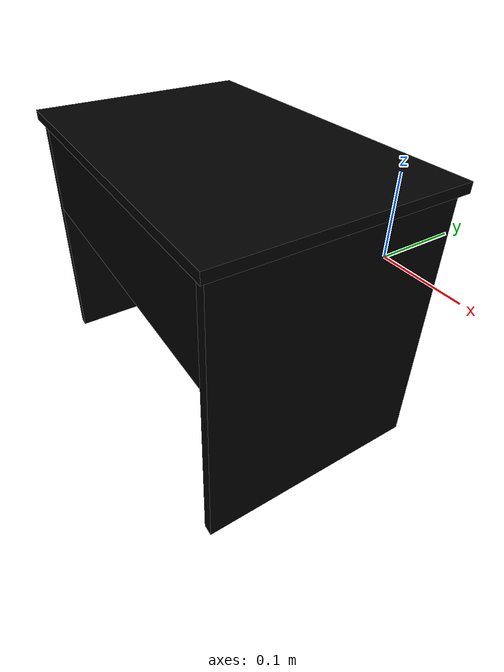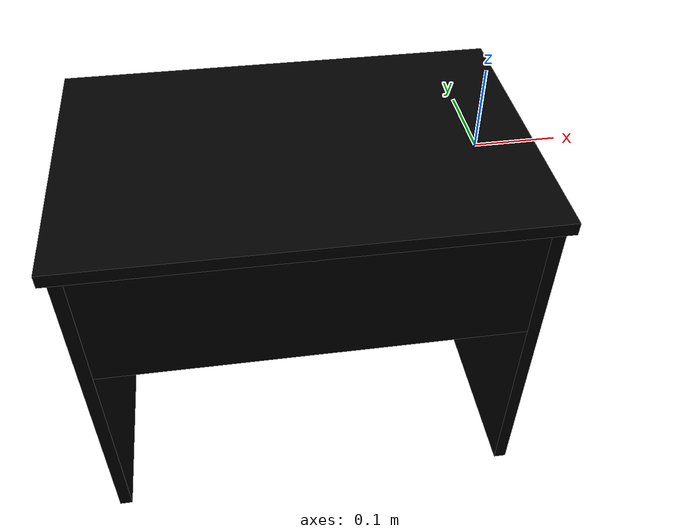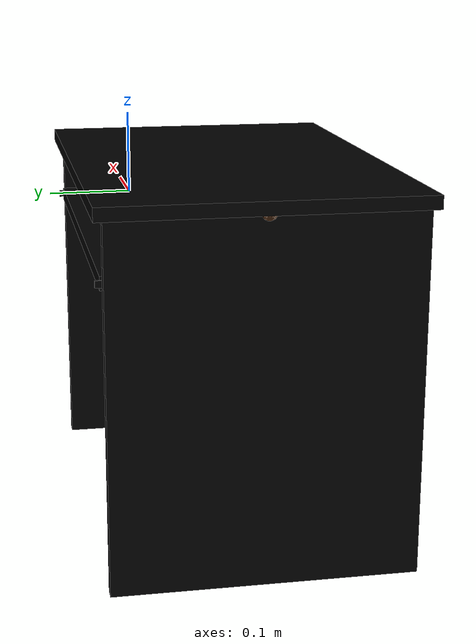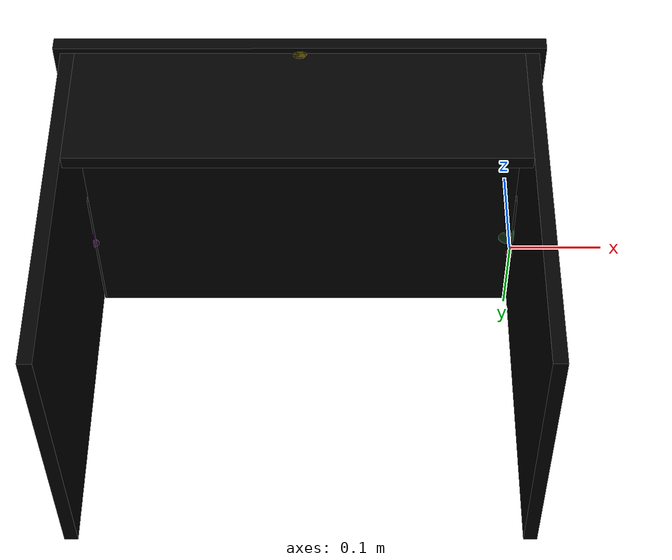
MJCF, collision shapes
<mujoco model="desk_hannes_0529">
    <custom>
        <numeric data="-0.278467 0.171887 0.003515 1.0 0.0 -1e-06 0.000885" name="0_part0_initpos"/>
        <numeric data="0.060741 0.01891 0.007061 0.0 -1.0 0.0 -0.0" name="8_part8_initpos"/>
        <numeric data="0.067668 -0.315762 0.007165 1.0 0.0 0.0 0.0" name="7_part7_initpos"/>
        <numeric data="0.561685 0.027393 0.007061 0.478652 -0.520473 0.478652 0.520473" name="6_part6_initpos"/>
        <numeric data="0.047691 0.340941 0.007061 0.707107 0.707107 2.9e-05 2.9e-05" name="5_part5_initpos"/>
        <numeric data="-0.488397 0.002862 0.007061 0.497087 -0.502896 -0.497087 -0.502896" name="4_part4_initpos"/>
        <numeric data="-0.24835 -0.085303 0.00087 0.706892 -0.017461 0.706891 0.017461" name="3_part3_initpos"/>
        <numeric data="-0.168998 0.03854 -0.000343 1.0 0.0 0.0 0.0" name="2_part2_initpos"/>
        <numeric data="-0.25187 0.053577 0.001034 1.0 0.0 0.0 0.0" name="1_part1_initpos"/>
    </custom>
    <asset>
        <mesh file="desk_hannes_0529/0.stl" name="part0"
              scale="0.0005583599999999999 0.0005583599999999999 0.0005583599999999999"/>
        <mesh file="desk_hannes_0529/8.stl" name="part8"
              scale="0.0005583599999999999 0.0005583599999999999 0.0005583599999999999"/>
        <mesh file="desk_hannes_0529/7.stl" name="part7"
              scale="0.0005583599999999999 0.0005583599999999999 0.0005583599999999999"/>
        <mesh file="desk_hannes_0529/6.stl" name="part6"
              scale="0.0005583599999999999 0.0005583599999999999 0.0005583599999999999"/>
        <mesh file="desk_hannes_0529/5.stl" name="part5"
              scale="0.0005583599999999999 0.0005583599999999999 0.0005583599999999999"/>
        <mesh file="desk_hannes_0529/4.stl" name="part4"
              scale="0.0005583599999999999 0.0005583599999999999 0.0005583599999999999"/>
        <mesh file="desk_hannes_0529/3.stl" name="part3"
              scale="0.0005583599999999999 0.0005583599999999999 0.0005583599999999999"/>
        <mesh file="desk_hannes_0529/2.stl" name="part2"
              scale="0.0005583599999999999 0.0005583599999999999 0.0005583599999999999"/>
        <mesh file="desk_hannes_0529/1.stl" name="part1"
              scale="0.0005583599999999999 0.0005583599999999999 0.0005583599999999999"/>
    </asset>
    <equality>
        <weld active="false" body1="0_part0" body2="7_part7" solimp="1 1 0.5" solref="0.01 0.3"/>
        <weld active="false" body1="3_part3" body2="7_part7" solimp="1 1 0.5" solref="0.01 0.3"/>
        <weld active="false" body1="8_part8" body2="6_part6" solimp="1 1 0.5" solref="0.01 0.3"/>
        <weld active="false" body1="4_part4" body2="0_part0" solimp="1 1 0.5" solref="0.01 0.3"/>
        <weld active="false" body1="4_part4" body2="3_part3" solimp="1 1 0.5" solref="0.01 0.3"/>
        <weld active="false" body1="0_part0" body2="6_part6" solimp="1 1 0.5" solref="0.01 0.3"/>
        <weld active="false" body1="3_part3" body2="6_part6" solimp="1 1 0.5" solref="0.01 0.3"/>
        <weld active="false" body1="8_part8" body2="4_part4" solimp="1 1 0.5" solref="0.01 0.3"/>
        <weld active="false" body1="8_part8" body2="5_part5" solimp="1 1 0.5" solref="0.01 0.3"/>
    </equality>
    <worldbody>
        <body name="0_part0" pos="-0.0 1.6750799999999996e-10 0.0" quat="1 0 0 0">
            <geom conaffinity="0" contype="0" density="0" mesh="part0" name="0_part0_mesh" pos="0.0 0.0 0.0"
                  rgba="0.82 0.71 0.55 1" type="mesh"/>
            <site name="0_part0_horizontal_radius_site" pos="-0.0 1.6750799999999996e-10 0.0" quat="1 0 0 0"
                  rgba="0 0 0 0" size="0.0005583599999999999"/>
            <site name="0_part0_top_site" pos="-0.0 1.6750799999999996e-10 0.0035455859999999994" quat="1 0 0 0"
                  rgba="0 0 0 0" size="0.0005583599999999999"/>
            <site name="0_part0_bottom_site" pos="-0.0 1.6750799999999996e-10 -0.0035455859999999994" quat="1 0 0 0"
                  rgba="0 0 0 0" size="0.0005583599999999999"/>
            <site name="0_part0_corner_site8" pos="-0.0014182426078919997 0.083675829935016 0.0035455859999999994"
                  quat="1 0 0 0" rgba="0 0 0 0" size="0.011167199999999997"/>
            <site name="0_part0_corner_site7" pos="0.001418242552056 0.083675829935016 0.0035455859999999994"
                  quat="1 0 0 0" rgba="0 0 0 0" size="0.011167199999999997"/>
            <site name="0_part0_corner_site6" pos="0.001418242552056 -0.0836758296 0.0035455859999999994" quat="1 0 0 0"
                  rgba="0 0 0 0" size="0.011167199999999997"/>
            <site name="0_part0_corner_site5" pos="-0.0014182426078919997 -0.0836758296 0.0035455859999999994"
                  quat="1 0 0 0" rgba="0 0 0 0" size="0.011167199999999997"/>
            <site name="0_part0_corner_site4" pos="-0.0014182426078919997 0.083675829935016 -0.0035455859999999994"
                  quat="1 0 0 0" rgba="0 0 0 0" size="0.011167199999999997"/>
            <site name="0_part0_corner_site3" pos="0.001418242552056 0.083675829935016 -0.0035455859999999994"
                  quat="1 0 0 0" rgba="0 0 0 0" size="0.011167199999999997"/>
            <site name="0_part0_corner_site2" pos="0.001418242552056 -0.0836758296 -0.0035455859999999994"
                  quat="1 0 0 0" rgba="0 0 0 0" size="0.011167199999999997"/>
            <site name="0_part0_corner_site1" pos="-0.0014182426078919997 -0.0836758296 -0.0035455859999999994"
                  quat="1 0 0 0" rgba="0 0 0 0" size="0.011167199999999997"/>
            <site name="slider-wall,0,180,conn_site1" pos="0.003796847999999999 0.000502524 -0.00039085199999999996"
                  quat="0.7071067 0 0.7071068 0" rgba="0.9019 0.0980 0.2941 0.3" size="0.011167199999999997"/>
            <site name="slider-drawer,0,conn_site1" pos="-0.005695271999999999 -0.026633772 -0.0015634079999999999"
                  quat="0.7071067 0 0.7071068 0" rgba="0.2352 0.7058 0.2941 0.3" size="0.011167199999999997"/>
            <geom density="50" name="noviz_collision_0_part0_0"
                  pos="0.00025920746279999994 0.002378557764 1.16473896e-05" quat="1 0 0 0" rgba="0 0 0 0"
                  size="0.0016774474463999997 0.08605438736399999 0.0035572333895999998" solref="0.001 1" type="box"/>
        </body>
        <body name="8_part8" pos="-0.22815844408011599 -0.07676193349400401 0.07091172" quat="1 0 0 0">
            <geom conaffinity="0" contype="0" density="0" mesh="part8" name="8_part8_mesh" pos="0.0 0.0 0.0"
                  rgba="0.82 0.71 0.55 1" type="mesh"/>
            <site name="8_part8_horizontal_radius_site" pos="0.0 0.0 0.0" quat="1 0 0 0" rgba="0 0 0 0"
                  size="0.0005583599999999999"/>
            <site name="8_part8_top_site" pos="0.0 0.0 0.007091178811991997" quat="1 0 0 0" rgba="0 0 0 0"
                  size="0.0005583599999999999"/>
            <site name="8_part8_bottom_site" pos="0.0 0.0 -0.007091178811991997" quat="1 0 0 0" rgba="0 0 0 0"
                  size="0.0005583599999999999"/>
            <site name="8_part8_corner_site8" pos="-0.25085021631199195 0.16752894190599593 0.007091178811991997"
                  quat="1 0 0 0" rgba="0 0 0 0" size="0.011167199999999997"/>
            <site name="8_part8_corner_site7" pos="0.25085021631199195 0.16752894190599593 0.007091178811991997"
                  quat="1 0 0 0" rgba="0 0 0 0" size="0.011167199999999997"/>
            <site name="8_part8_corner_site6" pos="0.25085021631199195 -0.16752894190599593 0.007091178811991997"
                  quat="1 0 0 0" rgba="0 0 0 0" size="0.011167199999999997"/>
            <site name="8_part8_corner_site5" pos="-0.25085021631199195 -0.16752894190599593 0.007091178811991997"
                  quat="1 0 0 0" rgba="0 0 0 0" size="0.011167199999999997"/>
            <site name="8_part8_corner_site4" pos="-0.25085021631199195 0.16752894190599593 -0.007091178811991997"
                  quat="1 0 0 0" rgba="0 0 0 0" size="0.011167199999999997"/>
            <site name="8_part8_corner_site3" pos="0.25085021631199195 0.16752894190599593 -0.007091178811991997"
                  quat="1 0 0 0" rgba="0 0 0 0" size="0.011167199999999997"/>
            <site name="8_part8_corner_site2" pos="0.25085021631199195 -0.16752894190599593 -0.007091178811991997"
                  quat="1 0 0 0" rgba="0 0 0 0" size="0.011167199999999997"/>
            <site name="8_part8_corner_site1" pos="-0.25085021631199195 -0.16752894190599593 -0.007091178811991997"
                  quat="1 0 0 0" rgba="0 0 0 0" size="0.011167199999999997"/>
            <site name="top-back,0,conn_site1" pos="-1.6750799999999998e-08 -0.15250067909999998 -0.007035336"
                  quat="1 0 0 0" rgba="1.0 0.8823 0.0980 0.3" size="0.011167199999999997"/>
            <site name="top-leftwall,0,conn_site1" pos="0.23636635109999996 0.0 -0.004857731999999999" quat="1 0 0 0"
                  rgba="0.2627 0.3882 0.8470 0.3" size="0.011167199999999997"/>
            <site name="top-rightwall,0,conn_site1" pos="-0.23662046073599993 0.0 -0.004857731999999999" quat="1 0 0 0"
                  rgba="0.9607 0.5098 0.1921 0.3" size="0.011167199999999997"/>
            <geom density="50" name="noviz_collision_8_part8_0" pos="-1.6750799999999998e-08 0.0 0.0" quat="1 0 0 0"
                  rgba="0 0 0 0" size="0.2508502094999999 0.16752893849999997 0.0070911775836" solref="0.001 1"
                  type="box"/>
        </body>
        <body name="7_part7" pos="-0.22815845094794399 -0.029782922399999995 0.0" quat="1 0 0 0">
            <geom conaffinity="0" contype="0" density="0" mesh="part7" name="7_part7_mesh" pos="0.0 0.0 0.0"
                  rgba="0.82 0.71 0.55 1" type="mesh"/>
            <site name="7_part7_horizontal_radius_site" pos="-0.0 -0.0 0.0" quat="1 0 0 0" rgba="0 0 0 0"
                  size="0.0005583599999999999"/>
            <site name="7_part7_top_site" pos="0.0 0.0 0.007091178811991997" quat="1 0 0 0" rgba="0 0 0 0"
                  size="0.0005583599999999999"/>
            <site name="7_part7_bottom_site" pos="0.0 0.0 -0.007091178811991997" quat="1 0 0 0" rgba="0 0 0 0"
                  size="0.0005583599999999999"/>
            <site name="7_part7_corner_site8" pos="-0.22674022469999996 0.11345875199999998 0.007091178811991997"
                  quat="1 0 0 0" rgba="0 0 0 0" size="0.011167199999999997"/>
            <site name="7_part7_corner_site7" pos="0.22674022469999996 0.11345875199999998 0.007091178811991997"
                  quat="1 0 0 0" rgba="0 0 0 0" size="0.011167199999999997"/>
            <site name="7_part7_corner_site6" pos="0.22674022469999996 -0.11345875199999998 0.007091178811991997"
                  quat="1 0 0 0" rgba="0 0 0 0" size="0.011167199999999997"/>
            <site name="7_part7_corner_site5" pos="-0.22674022469999996 -0.11345875199999998 0.007091178811991997"
                  quat="1 0 0 0" rgba="0 0 0 0" size="0.011167199999999997"/>
            <site name="7_part7_corner_site4" pos="-0.22674022469999996 0.11345875199999998 -0.007091178811991997"
                  quat="1 0 0 0" rgba="0 0 0 0" size="0.011167199999999997"/>
            <site name="7_part7_corner_site3" pos="0.22674022469999996 0.11345875199999998 -0.007091178811991997"
                  quat="1 0 0 0" rgba="0 0 0 0" size="0.011167199999999997"/>
            <site name="7_part7_corner_site2" pos="0.22674022469999996 -0.11345875199999998 -0.007091178811991997"
                  quat="1 0 0 0" rgba="0 0 0 0" size="0.011167199999999997"/>
            <site name="7_part7_corner_site1" pos="-0.22674022469999996 -0.11345875199999998 -0.007091178811991997"
                  quat="1 0 0 0" rgba="0 0 0 0" size="0.011167199999999997"/>
            <site name="drawer-slider,0,conn_site1"
                  pos="0.22246318709999996 0.003149150399999999 -0.0015634079999999999" quat="0.7071067 0 0.7071068 0"
                  rgba="0.2352 0.7058 0.2941 0.3" size="0.011167199999999997"/>
            <geom density="50" name="noviz_collision_7_part7_0" pos="0.0 0.0 0.0" quat="1 0 0 0" rgba="0 0 0 0"
                  size="0.22674022469999996 0.11345875199999998 0.0070911775836" solref="0.001 1" type="box"/>
        </body>
        <body name="6_part6" pos="0.008509414552056 -0.0767619369 -0.12764109599999998" quat="1 0 0 0">
            <geom conaffinity="0" contype="0" density="0" mesh="part6" name="6_part6_mesh" pos="0.0 0.0 0.0"
                  rgba="0.82 0.71 0.55 1" type="mesh"/>
            <site name="6_part6_horizontal_radius_site" pos="0.0 5.583599999999999e-11 -0.0" quat="1 0 0 0"
                  rgba="0 0 0 0" size="0.0005583599999999999"/>
            <site name="6_part6_top_site" pos="0.0 5.583599999999999e-11 0.19146164399999996" quat="1 0 0 0"
                  rgba="0 0 0 0" size="0.0005583599999999999"/>
            <site name="6_part6_bottom_site" pos="0.0 5.583599999999999e-11 -0.19146164399999996" quat="1 0 0 0"
                  rgba="0 0 0 0" size="0.0005583599999999999"/>
            <site name="6_part6_corner_site8" pos="-0.007091178811991997 0.160437766555836 0.19146164399999996"
                  quat="1 0 0 0" rgba="0 0 0 0" size="0.011167199999999997"/>
            <site name="6_part6_corner_site7" pos="0.007091178811991997 0.160437766555836 0.19146164399999996"
                  quat="1 0 0 0" rgba="0 0 0 0" size="0.011167199999999997"/>
            <site name="6_part6_corner_site6" pos="0.007091178811991997 -0.160437766444164 0.19146164399999996"
                  quat="1 0 0 0" rgba="0 0 0 0" size="0.011167199999999997"/>
            <site name="6_part6_corner_site5" pos="-0.007091178811991997 -0.160437766444164 0.19146164399999996"
                  quat="1 0 0 0" rgba="0 0 0 0" size="0.011167199999999997"/>
            <site name="6_part6_corner_site4" pos="-0.007091178811991997 0.160437766555836 -0.19146164399999996"
                  quat="1 0 0 0" rgba="0 0 0 0" size="0.011167199999999997"/>
            <site name="6_part6_corner_site3" pos="0.007091178811991997 0.160437766555836 -0.19146164399999996"
                  quat="1 0 0 0" rgba="0 0 0 0" size="0.011167199999999997"/>
            <site name="6_part6_corner_site2" pos="0.007091178811991997 -0.160437766444164 -0.19146164399999996"
                  quat="1 0 0 0" rgba="0 0 0 0" size="0.011167199999999997"/>
            <site name="6_part6_corner_site1" pos="-0.007091178811991997 -0.160437766444164 -0.19146164399999996"
                  quat="1 0 0 0" rgba="0 0 0 0" size="0.011167199999999997"/>
            <site name="leftwall-top,0,conn_site1" pos="-0.00030152556719999994 0.0 0.19369508399999996" quat="1 0 0 0"
                  rgba="0.2627 0.3882 0.8470 0.3" size="0.011167199999999997"/>
            <site name="wall-slider,0,180,conn_site1" pos="-0.0047125639835999995 0.0772644609 0.12725024399999998"
                  quat="0.7071067 0 0.7071068 0" rgba="0.9019 0.0980 0.2941 0.3" size="0.011167199999999997"/>
            <geom density="50" name="noviz_collision_6_part6_0" pos="0.0 -0.0010432956599999998 0.0008873289611999999"
                  quat="1 0 0 0" rgba="0 0 0 0" size="0.0070911775836 0.15939447083999994 0.19234898971199996"
                  solref="0.001 1" type="box"/>
        </body>
        <body name="5_part5" pos="-0.22815845284636796 -0.23010853139999995 -0.007091175852683999" quat="1 0 0 0">
            <geom conaffinity="0" contype="0" density="0" mesh="part5" name="5_part5_mesh" pos="0.0 0.0 0.0"
                  rgba="0.82 0.71 0.55 1" type="mesh"/>
            <site name="5_part5_horizontal_radius_site"
                  pos="-1.5075719999999998e-09 5.583599999999999e-11 -4.466879999999999e-10" quat="1 0 0 0"
                  rgba="0 0 0 0" size="0.0005583599999999999"/>
            <site name="5_part5_top_site" pos="-1.451736e-09 5.583599999999999e-11 0.070911723405996" quat="1 0 0 0"
                  rgba="0 0 0 0" size="0.0005583599999999999"/>
            <site name="5_part5_bottom_site" pos="-1.451736e-09 5.583599999999999e-11 -0.070911724243536" quat="1 0 0 0"
                  rgba="0 0 0 0" size="0.0005583599999999999"/>
            <site name="5_part5_corner_site8" pos="-0.22957669690599597 0.007091172055835999 0.070911723405996"
                  quat="1 0 0 0" rgba="0 0 0 0" size="0.011167199999999997"/>
            <site name="5_part5_corner_site7" pos="0.22957669394668798 0.007091172055835999 0.070911723405996"
                  quat="1 0 0 0" rgba="0 0 0 0" size="0.011167199999999997"/>
            <site name="5_part5_corner_site6" pos="0.22957669394668798 -0.007091171944163999 0.070911723405996"
                  quat="1 0 0 0" rgba="0 0 0 0" size="0.011167199999999997"/>
            <site name="5_part5_corner_site5" pos="-0.22957669690599597 -0.007091171944163999 0.070911723405996"
                  quat="1 0 0 0" rgba="0 0 0 0" size="0.011167199999999997"/>
            <site name="5_part5_corner_site4" pos="-0.22957669690599597 0.007091172055835999 -0.070911724243536"
                  quat="1 0 0 0" rgba="0 0 0 0" size="0.011167199999999997"/>
            <site name="5_part5_corner_site3" pos="0.22957669394668798 0.007091172055835999 -0.070911724243536"
                  quat="1 0 0 0" rgba="0 0 0 0" size="0.011167199999999997"/>
            <site name="5_part5_corner_site2" pos="0.22957669394668798 -0.007091171944163999 -0.070911724243536"
                  quat="1 0 0 0" rgba="0 0 0 0" size="0.011167199999999997"/>
            <site name="5_part5_corner_site1" pos="-0.22957669690599597 -0.007091171944163999 -0.070911724243536"
                  quat="1 0 0 0" rgba="0 0 0 0" size="0.011167199999999997"/>
            <site name="back-top,0,conn_site1" pos="0.0 0.0008459042327999997 0.07096755599999999" quat="1 0 0 0"
                  rgba="1.0 0.8823 0.0980 0.3" size="0.011167199999999997"/>
            <geom density="50" name="noviz_collision_5_part5_0" pos="0.0 0.0 5.583599999999999e-09" quat="1 0 0 0"
                  rgba="0 0 0 0" size="0.22957669349999998 0.0070911775836 0.07091172" solref="0.001 1" type="box"/>
        </body>
        <body name="4_part4" pos="-0.464826316447944 -0.0767619369 -0.12764109599999998" quat="1 0 0 0">
            <geom conaffinity="0" contype="0" density="0" mesh="part4" name="4_part4_mesh" pos="0.0 0.0 0.0"
                  rgba="0.82 0.71 0.55 1" type="mesh"/>
            <site name="4_part4_horizontal_radius_site" pos="5.583599999999999e-11 5.583599999999999e-11 -0.0"
                  quat="1 0 0 0" rgba="0 0 0 0" size="0.0005583599999999999"/>
            <site name="4_part4_top_site" pos="5.583599999999999e-11 5.583599999999999e-11 0.19146164399999996"
                  quat="1 0 0 0" rgba="0 0 0 0" size="0.0005583599999999999"/>
            <site name="4_part4_bottom_site" pos="5.583599999999999e-11 5.583599999999999e-11 -0.19146164399999996"
                  quat="1 0 0 0" rgba="0 0 0 0" size="0.0005583599999999999"/>
            <site name="4_part4_corner_site8" pos="-0.007091171944163999 0.160437766555836 0.19146164399999996"
                  quat="1 0 0 0" rgba="0 0 0 0" size="0.011167199999999997"/>
            <site name="4_part4_corner_site7" pos="0.007091172055835999 0.160437766555836 0.19146164399999996"
                  quat="1 0 0 0" rgba="0 0 0 0" size="0.011167199999999997"/>
            <site name="4_part4_corner_site6" pos="0.007091172055835999 -0.160437766444164 0.19146164399999996"
                  quat="1 0 0 0" rgba="0 0 0 0" size="0.011167199999999997"/>
            <site name="4_part4_corner_site5" pos="-0.007091171944163999 -0.160437766444164 0.19146164399999996"
                  quat="1 0 0 0" rgba="0 0 0 0" size="0.011167199999999997"/>
            <site name="4_part4_corner_site4" pos="-0.007091171944163999 0.160437766555836 -0.19146164399999996"
                  quat="1 0 0 0" rgba="0 0 0 0" size="0.011167199999999997"/>
            <site name="4_part4_corner_site3" pos="0.007091172055835999 0.160437766555836 -0.19146164399999996"
                  quat="1 0 0 0" rgba="0 0 0 0" size="0.011167199999999997"/>
            <site name="4_part4_corner_site2" pos="0.007091172055835999 -0.160437766444164 -0.19146164399999996"
                  quat="1 0 0 0" rgba="0 0 0 0" size="0.011167199999999997"/>
            <site name="4_part4_corner_site1" pos="-0.007091171944163999 -0.160437766444164 -0.19146164399999996"
                  quat="1 0 0 0" rgba="0 0 0 0" size="0.011167199999999997"/>
            <site name="rightwall-top,0,conn_site1" pos="4.743826559999999e-05 0.0 0.19369508399999996" quat="1 0 0 0"
                  rgba="0.9607 0.5098 0.1921 0.3" size="0.011167199999999997"/>
            <site name="rightwall-slider,0,conn_site1" pos="0.0050726782656 0.05928526889999999 0.128255292"
                  quat="0.7071067 0 -0.7071068 0" rgba="0.5686 0.1176 0.7058 0.3" size="0.011167199999999997"/>
            <geom density="50" name="noviz_collision_4_part4_0" pos="0.0 -0.0010432956599999998 0.0008873289611999999"
                  quat="1 0 0 0" rgba="0 0 0 0" size="0.0070911775836 0.15939447083999994 0.19234898971199996"
                  solref="0.001 1" type="box"/>
        </body>
        <body name="3_part3" pos="-0.45631691038295996 1.6750799999999996e-10 0.0" quat="1 0 0 0">
            <geom conaffinity="0" contype="0" density="0" mesh="part3" name="3_part3_mesh" pos="0.0 0.0 0.0"
                  rgba="0.82 0.71 0.55 1" type="mesh"/>
            <site name="3_part3_horizontal_radius_site" pos="0.0 1.6750799999999996e-10 0.0" quat="1 0 0 0"
                  rgba="0 0 0 0" size="0.0005583599999999999"/>
            <site name="3_part3_top_site" pos="0.0 1.6750799999999996e-10 0.0035455859999999994" quat="1 0 0 0"
                  rgba="0 0 0 0" size="0.0005583599999999999"/>
            <site name="3_part3_bottom_site" pos="0.0 1.6750799999999996e-10 -0.0035455859999999994" quat="1 0 0 0"
                  rgba="0 0 0 0" size="0.0005583599999999999"/>
            <site name="3_part3_corner_site8" pos="-0.0014182349025239998 0.083675829935016 0.0035455859999999994"
                  quat="1 0 0 0" rgba="0 0 0 0" size="0.011167199999999997"/>
            <site name="3_part3_corner_site7" pos="0.0014182349025239998 0.083675829935016 0.0035455859999999994"
                  quat="1 0 0 0" rgba="0 0 0 0" size="0.011167199999999997"/>
            <site name="3_part3_corner_site6" pos="0.0014182349025239998 -0.0836758296 0.0035455859999999994"
                  quat="1 0 0 0" rgba="0 0 0 0" size="0.011167199999999997"/>
            <site name="3_part3_corner_site5" pos="-0.0014182349025239998 -0.0836758296 0.0035455859999999994"
                  quat="1 0 0 0" rgba="0 0 0 0" size="0.011167199999999997"/>
            <site name="3_part3_corner_site4" pos="-0.0014182349025239998 0.083675829935016 -0.0035455859999999994"
                  quat="1 0 0 0" rgba="0 0 0 0" size="0.011167199999999997"/>
            <site name="3_part3_corner_site3" pos="0.0014182349025239998 0.083675829935016 -0.0035455859999999994"
                  quat="1 0 0 0" rgba="0 0 0 0" size="0.011167199999999997"/>
            <site name="3_part3_corner_site2" pos="0.0014182349025239998 -0.0836758296 -0.0035455859999999994"
                  quat="1 0 0 0" rgba="0 0 0 0" size="0.011167199999999997"/>
            <site name="3_part3_corner_site1" pos="-0.0014182349025239998 -0.0836758296 -0.0035455859999999994"
                  quat="1 0 0 0" rgba="0 0 0 0" size="0.011167199999999997"/>
            <site name="slider-rightwall,0,conn_site1" pos="-0.003436722550799999 -0.017476667999999997 0.000614196"
                  quat="0.7071067 0 -0.7071068 0" rgba="0.5686 0.1176 0.7058 0.3" size="0.011167199999999997"/>
            <geom density="50" name="noviz_collision_3_part3_0" pos="-0.0002591739612 0.002378557764 1.16473896e-05"
                  quat="1 0 0 0" rgba="0 0 0 0" size="0.0011590492715999998 0.08605438736399999 0.0035572333895999998"
                  solref="0.001 1" type="box"/>
        </body>
        <body name="2_part2" pos="-0.4572387624079439 -0.07957957087713599 -0.00234008676" quat="1 0 0 0">
            <geom conaffinity="0" contype="0" density="0" mesh="part2" name="2_part2_mesh" pos="0.0 0.0 0.0"
                  rgba="0.82 0.71 0.55 1" type="mesh"/>
            <site name="2_part2_horizontal_radius_site" pos="0.0 -0.0 -0.0" quat="1 0 0 0" rgba="0 0 0 0"
                  size="0.0005583599999999999"/>
            <site name="2_part2_top_site" pos="0.0 0.0 0.0010636757999999997" quat="1 0 0 0" rgba="0 0 0 0"
                  size="0.0005583599999999999"/>
            <site name="2_part2_bottom_site" pos="0.0 0.0 -0.0010636757999999997" quat="1 0 0 0" rgba="0 0 0 0"
                  size="0.0005583599999999999"/>
            <site name="2_part2_corner_site8" pos="-0.0003545586 0.0010636757999999997 0.0010636757999999997"
                  quat="1 0 0 0" rgba="0 0 0 0" size="0.011167199999999997"/>
            <site name="2_part2_corner_site7" pos="0.0003545586 0.0010636757999999997 0.0010636757999999997"
                  quat="1 0 0 0" rgba="0 0 0 0" size="0.011167199999999997"/>
            <site name="2_part2_corner_site6" pos="0.0003545586 -0.0010636757999999997 0.0010636757999999997"
                  quat="1 0 0 0" rgba="0 0 0 0" size="0.011167199999999997"/>
            <site name="2_part2_corner_site5" pos="-0.0003545586 -0.0010636757999999997 0.0010636757999999997"
                  quat="1 0 0 0" rgba="0 0 0 0" size="0.011167199999999997"/>
            <site name="2_part2_corner_site4" pos="-0.0003545586 0.0010636757999999997 -0.0010636757999999997"
                  quat="1 0 0 0" rgba="0 0 0 0" size="0.011167199999999997"/>
            <site name="2_part2_corner_site3" pos="0.0003545586 0.0010636757999999997 -0.0010636757999999997"
                  quat="1 0 0 0" rgba="0 0 0 0" size="0.011167199999999997"/>
            <site name="2_part2_corner_site2" pos="0.0003545586 -0.0010636757999999997 -0.0010636757999999997"
                  quat="1 0 0 0" rgba="0 0 0 0" size="0.011167199999999997"/>
            <site name="2_part2_corner_site1" pos="-0.0003545586 -0.0010636757999999997 -0.0010636757999999997"
                  quat="1 0 0 0" rgba="0 0 0 0" size="0.011167199999999997"/>
            <geom density="50" name="noviz_collision_2_part2_0" pos="0.0 0.0 0.0" quat="1 0 0 0" rgba="0 0 0 0"
                  size="0.0003545641835999999 0.0010636757999999997 0.0010636757999999997" solref="0.001 1" type="box"/>
        </body>
        <body name="1_part1" pos="0.000921860512056 -0.07957957087713599 -0.00234008676" quat="1 0 0 0">
            <geom conaffinity="0" contype="0" density="0" mesh="part1" name="1_part1_mesh" pos="0.0 0.0 0.0"
                  rgba="0.82 0.71 0.55 1" type="mesh"/>
            <site name="1_part1_horizontal_radius_site" pos="0.0 -0.0 -0.0" quat="1 0 0 0" rgba="0 0 0 0"
                  size="0.0005583599999999999"/>
            <site name="1_part1_top_site" pos="0.0 0.0 0.0010636757999999997" quat="1 0 0 0" rgba="0 0 0 0"
                  size="0.0005583599999999999"/>
            <site name="1_part1_bottom_site" pos="0.0 0.0 -0.0010636757999999997" quat="1 0 0 0" rgba="0 0 0 0"
                  size="0.0005583599999999999"/>
            <site name="1_part1_corner_site8" pos="-0.0003545586 0.0010636757999999997 0.0010636757999999997"
                  quat="1 0 0 0" rgba="0 0 0 0" size="0.011167199999999997"/>
            <site name="1_part1_corner_site7" pos="0.0003545586 0.0010636757999999997 0.0010636757999999997"
                  quat="1 0 0 0" rgba="0 0 0 0" size="0.011167199999999997"/>
            <site name="1_part1_corner_site6" pos="0.0003545586 -0.0010636757999999997 0.0010636757999999997"
                  quat="1 0 0 0" rgba="0 0 0 0" size="0.011167199999999997"/>
            <site name="1_part1_corner_site5" pos="-0.0003545586 -0.0010636757999999997 0.0010636757999999997"
                  quat="1 0 0 0" rgba="0 0 0 0" size="0.011167199999999997"/>
            <site name="1_part1_corner_site4" pos="-0.0003545586 0.0010636757999999997 -0.0010636757999999997"
                  quat="1 0 0 0" rgba="0 0 0 0" size="0.011167199999999997"/>
            <site name="1_part1_corner_site3" pos="0.0003545586 0.0010636757999999997 -0.0010636757999999997"
                  quat="1 0 0 0" rgba="0 0 0 0" size="0.011167199999999997"/>
            <site name="1_part1_corner_site2" pos="0.0003545586 -0.0010636757999999997 -0.0010636757999999997"
                  quat="1 0 0 0" rgba="0 0 0 0" size="0.011167199999999997"/>
            <site name="1_part1_corner_site1" pos="-0.0003545586 -0.0010636757999999997 -0.0010636757999999997"
                  quat="1 0 0 0" rgba="0 0 0 0" size="0.011167199999999997"/>
            <geom density="50" name="noviz_collision_1_part1_0" pos="0.0 0.0 0.0" quat="1 0 0 0" rgba="0 0 0 0"
                  size="0.0003545586 0.0010636757999999997 0.0010636757999999997" solref="0.001 1" type="box"/>
        </body>
    </worldbody>
    <actuator/>
    <sensor/>
    <contact/>
    <default/>
</mujoco>
